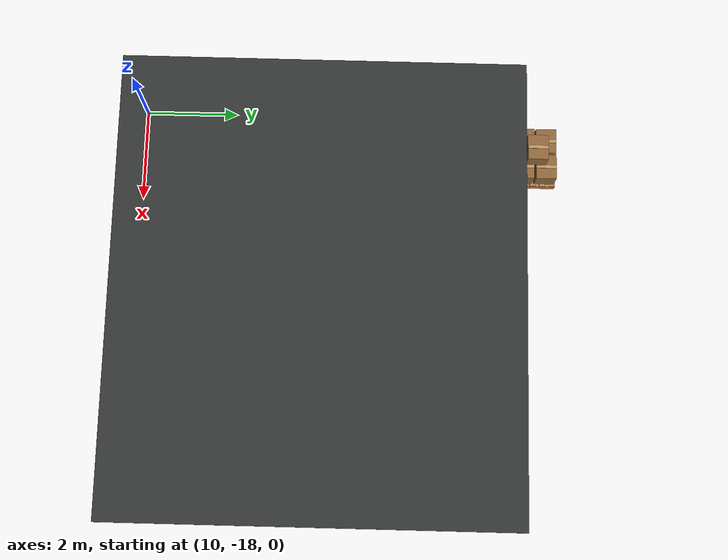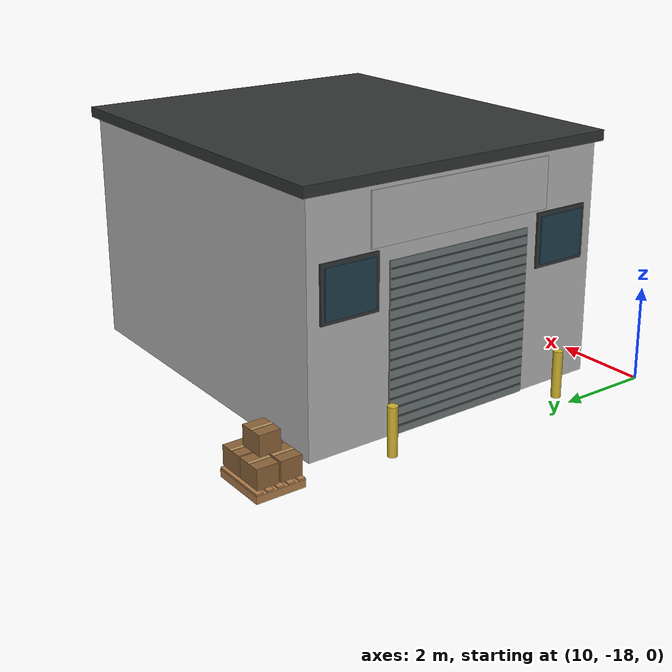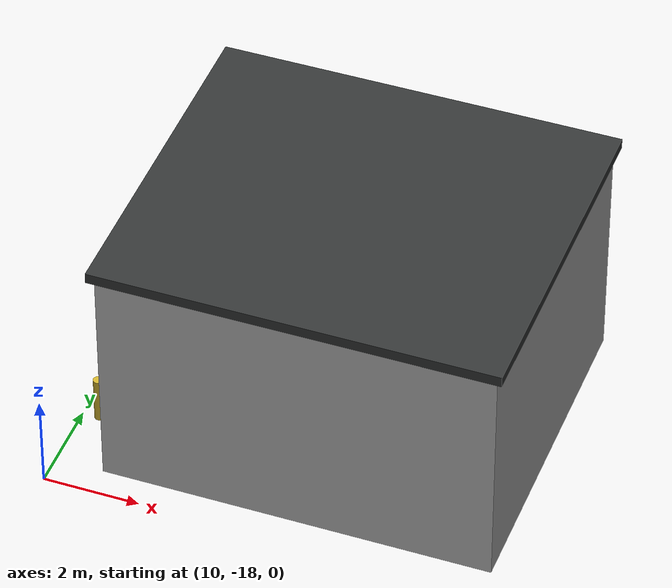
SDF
<sdf version="1.5">
 <world name="default">
  <include><uri>model://sun</uri></include>
  <model name="brick_warehouse">
   <static>true</static>
   <pose>15 -13.9 0.003 0 0 0</pose>
   <link name="structure">
    <visual name="main_building">
     <pose>0 0 2.5 0 0 0</pose>
     <geometry><box><size>8 7 5</size></box></geometry>
     <material>
      <script>
       <uri>file:///home/fxxk/px4_agent/scene/materials/scripts</uri>
       <uri>file:///home/fxxk/px4_agent/scene/materials/textures</uri>
       <name>Yard/brick</name>
      </script>
     </material>
    </visual>
    <collision name="main_building_collision">
     <pose>0 0 2.5 0 0 0</pose>
     <geometry><box><size>8 7 5</size></box></geometry>
     <surface><friction><ode><mu>1.0</mu><mu2>1.0</mu2></ode></friction></surface>
    </collision>
    <visual name="flat_roof">
     <pose>0 0 5.1 0 0 0</pose>
     <geometry><box><size>8.25 7.25 0.22</size></box></geometry>
     <material>
      <ambient>0.2 0.21 0.21 1</ambient>
      <diffuse>0.2 0.21 0.21 1</diffuse>
      <specular>0.04 0.04 0.04 1</specular>
     </material>
    </visual>
    <collision name="flat_roof_collision">
     <pose>0 0 5.1 0 0 0</pose>
     <geometry><box><size>8.25 7.25 0.22</size></box></geometry>
     <surface><friction><ode><mu>1.0</mu><mu2>1.0</mu2></ode></friction></surface>
    </collision>
    <visual name="loading_door">
     <pose>-4.022 0 1.75 0 0 0</pose>
     <geometry><box><size>0.032 3.4 3.5</size></box></geometry>
     <material>
      <ambient>0.45 0.48 0.48 1</ambient>
      <diffuse>0.45 0.48 0.48 1</diffuse>
      <specular>0.04 0.04 0.04 1</specular>
     </material>
    </visual>
    <visual name="door_slat_0">
     <pose>-4.048 0 0.18 0 0 0</pose>
     <geometry><box><size>0.036 3.36 0.025</size></box></geometry>
     <material>
      <ambient>0.27 0.3 0.3 1</ambient>
      <diffuse>0.27 0.3 0.3 1</diffuse>
      <specular>0.04 0.04 0.04 1</specular>
     </material>
    </visual>
    <visual name="door_slat_1">
     <pose>-4.048 0 0.378125 0 0 0</pose>
     <geometry><box><size>0.036 3.36 0.025</size></box></geometry>
     <material>
      <ambient>0.27 0.3 0.3 1</ambient>
      <diffuse>0.27 0.3 0.3 1</diffuse>
      <specular>0.04 0.04 0.04 1</specular>
     </material>
    </visual>
    <visual name="door_slat_2">
     <pose>-4.048 0 0.57625 0 0 0</pose>
     <geometry><box><size>0.036 3.36 0.025</size></box></geometry>
     <material>
      <ambient>0.27 0.3 0.3 1</ambient>
      <diffuse>0.27 0.3 0.3 1</diffuse>
      <specular>0.04 0.04 0.04 1</specular>
     </material>
    </visual>
    <visual name="door_slat_3">
     <pose>-4.048 0 0.774375 0 0 0</pose>
     <geometry><box><size>0.036 3.36 0.025</size></box></geometry>
     <material>
      <ambient>0.27 0.3 0.3 1</ambient>
      <diffuse>0.27 0.3 0.3 1</diffuse>
      <specular>0.04 0.04 0.04 1</specular>
     </material>
    </visual>
    <visual name="door_slat_4">
     <pose>-4.048 0 0.9725 0 0 0</pose>
     <geometry><box><size>0.036 3.36 0.025</size></box></geometry>
     <material>
      <ambient>0.27 0.3 0.3 1</ambient>
      <diffuse>0.27 0.3 0.3 1</diffuse>
      <specular>0.04 0.04 0.04 1</specular>
     </material>
    </visual>
    <visual name="door_slat_5">
     <pose>-4.048 0 1.170625 0 0 0</pose>
     <geometry><box><size>0.036 3.36 0.025</size></box></geometry>
     <material>
      <ambient>0.27 0.3 0.3 1</ambient>
      <diffuse>0.27 0.3 0.3 1</diffuse>
      <specular>0.04 0.04 0.04 1</specular>
     </material>
    </visual>
    <visual name="door_slat_6">
     <pose>-4.048 0 1.36875 0 0 0</pose>
     <geometry><box><size>0.036 3.36 0.025</size></box></geometry>
     <material>
      <ambient>0.27 0.3 0.3 1</ambient>
      <diffuse>0.27 0.3 0.3 1</diffuse>
      <specular>0.04 0.04 0.04 1</specular>
     </material>
    </visual>
    <visual name="door_slat_7">
     <pose>-4.048 0 1.566875 0 0 0</pose>
     <geometry><box><size>0.036 3.36 0.025</size></box></geometry>
     <material>
      <ambient>0.27 0.3 0.3 1</ambient>
      <diffuse>0.27 0.3 0.3 1</diffuse>
      <specular>0.04 0.04 0.04 1</specular>
     </material>
    </visual>
    <visual name="door_slat_8">
     <pose>-4.048 0 1.765 0 0 0</pose>
     <geometry><box><size>0.036 3.36 0.025</size></box></geometry>
     <material>
      <ambient>0.27 0.3 0.3 1</ambient>
      <diffuse>0.27 0.3 0.3 1</diffuse>
      <specular>0.04 0.04 0.04 1</specular>
     </material>
    </visual>
    <visual name="door_slat_9">
     <pose>-4.048 0 1.963125 0 0 0</pose>
     <geometry><box><size>0.036 3.36 0.025</size></box></geometry>
     <material>
      <ambient>0.27 0.3 0.3 1</ambient>
      <diffuse>0.27 0.3 0.3 1</diffuse>
      <specular>0.04 0.04 0.04 1</specular>
     </material>
    </visual>
    <visual name="door_slat_10">
     <pose>-4.048 0 2.16125 0 0 0</pose>
     <geometry><box><size>0.036 3.36 0.025</size></box></geometry>
     <material>
      <ambient>0.27 0.3 0.3 1</ambient>
      <diffuse>0.27 0.3 0.3 1</diffuse>
      <specular>0.04 0.04 0.04 1</specular>
     </material>
    </visual>
    <visual name="door_slat_11">
     <pose>-4.048 0 2.359375 0 0 0</pose>
     <geometry><box><size>0.036 3.36 0.025</size></box></geometry>
     <material>
      <ambient>0.27 0.3 0.3 1</ambient>
      <diffuse>0.27 0.3 0.3 1</diffuse>
      <specular>0.04 0.04 0.04 1</specular>
     </material>
    </visual>
    <visual name="door_slat_12">
     <pose>-4.048 0 2.5575 0 0 0</pose>
     <geometry><box><size>0.036 3.36 0.025</size></box></geometry>
     <material>
      <ambient>0.27 0.3 0.3 1</ambient>
      <diffuse>0.27 0.3 0.3 1</diffuse>
      <specular>0.04 0.04 0.04 1</specular>
     </material>
    </visual>
    <visual name="door_slat_13">
     <pose>-4.048 0 2.755625 0 0 0</pose>
     <geometry><box><size>0.036 3.36 0.025</size></box></geometry>
     <material>
      <ambient>0.27 0.3 0.3 1</ambient>
      <diffuse>0.27 0.3 0.3 1</diffuse>
      <specular>0.04 0.04 0.04 1</specular>
     </material>
    </visual>
    <visual name="door_slat_14">
     <pose>-4.048 0 2.95375 0 0 0</pose>
     <geometry><box><size>0.036 3.36 0.025</size></box></geometry>
     <material>
      <ambient>0.27 0.3 0.3 1</ambient>
      <diffuse>0.27 0.3 0.3 1</diffuse>
      <specular>0.04 0.04 0.04 1</specular>
     </material>
    </visual>
    <visual name="door_slat_15">
     <pose>-4.048 0 3.151875 0 0 0</pose>
     <geometry><box><size>0.036 3.36 0.025</size></box></geometry>
     <material>
      <ambient>0.27 0.3 0.3 1</ambient>
      <diffuse>0.27 0.3 0.3 1</diffuse>
      <specular>0.04 0.04 0.04 1</specular>
     </material>
    </visual>
    <visual name="door_slat_16">
     <pose>-4.048 0 3.35 0 0 0</pose>
     <geometry><box><size>0.036 3.36 0.025</size></box></geometry>
     <material>
      <ambient>0.27 0.3 0.3 1</ambient>
      <diffuse>0.27 0.3 0.3 1</diffuse>
      <specular>0.04 0.04 0.04 1</specular>
     </material>
    </visual>
    <visual name="front_window_frame_-1">
     <pose>-4.033 -2.6 3.17 0 0 0</pose>
     <geometry><box><size>0.044 1.28 1.15</size></box></geometry>
     <material>
      <ambient>0.2 0.22 0.22 1</ambient>
      <diffuse>0.2 0.22 0.22 1</diffuse>
      <specular>0.04 0.04 0.04 1</specular>
     </material>
    </visual>
    <visual name="front_window_-1">
     <pose>-4.064 -2.6 3.17 0 0 0</pose>
     <geometry><box><size>0.048 1.12 0.99</size></box></geometry>
     <material>
      <ambient>0.12 0.25 0.3 1</ambient>
      <diffuse>0.12 0.25 0.3 1</diffuse>
      <specular>0.04 0.04 0.04 1</specular>
     </material>
    </visual>
    <visual name="front_window_frame_1">
     <pose>-4.033 2.6 3.17 0 0 0</pose>
     <geometry><box><size>0.044 1.28 1.15</size></box></geometry>
     <material>
      <ambient>0.2 0.22 0.22 1</ambient>
      <diffuse>0.2 0.22 0.22 1</diffuse>
      <specular>0.04 0.04 0.04 1</specular>
     </material>
    </visual>
    <visual name="front_window_1">
     <pose>-4.064 2.6 3.17 0 0 0</pose>
     <geometry><box><size>0.048 1.12 0.99</size></box></geometry>
     <material>
      <ambient>0.12 0.25 0.3 1</ambient>
      <diffuse>0.12 0.25 0.3 1</diffuse>
      <specular>0.04 0.04 0.04 1</specular>
     </material>
    </visual>
    <visual name="warehouse_name">
     <pose>-4.06 0 4.35 0 0 0</pose>
     <geometry><box><size>0.028 4.3 1.075</size></box></geometry>
     <material>
      <script>
       <uri>file:///home/fxxk/px4_agent/scene/materials/scripts</uri>
       <uri>file:///home/fxxk/px4_agent/scene/materials/textures</uri>
       <name>Yard/warehouse_sign</name>
      </script>
     </material>
    </visual>
    <visual name="dock_bollard_0">
     <pose>-4.65 -2.1 0.5 0 0 0</pose>
     <geometry><cylinder><radius>0.1</radius><length>1</length></cylinder></geometry>
     <material>
      <ambient>0.82 0.7 0.18 1</ambient>
      <diffuse>0.82 0.7 0.18 1</diffuse>
      <specular>0.04 0.04 0.04 1</specular>
     </material>
    </visual>
    <collision name="dock_bollard_0_collision">
     <pose>-4.65 -2.1 0.5 0 0 0</pose>
     <geometry><cylinder><radius>0.1</radius><length>1</length></cylinder></geometry>
     <surface><friction><ode><mu>1.0</mu><mu2>1.0</mu2></ode></friction></surface>
    </collision>
    <visual name="dock_bollard_1">
     <pose>-4.65 2.1 0.5 0 0 0</pose>
     <geometry><cylinder><radius>0.1</radius><length>1</length></cylinder></geometry>
     <material>
      <ambient>0.82 0.7 0.18 1</ambient>
      <diffuse>0.82 0.7 0.18 1</diffuse>
      <specular>0.04 0.04 0.04 1</specular>
     </material>
    </visual>
    <collision name="dock_bollard_1_collision">
     <pose>-4.65 2.1 0.5 0 0 0</pose>
     <geometry><cylinder><radius>0.1</radius><length>1</length></cylinder></geometry>
     <surface><friction><ode><mu>1.0</mu><mu2>1.0</mu2></ode></friction></surface>
    </collision>
   </link>
  </model>
  <model name="cartons_pallet_1">
   <static>true</static>
   <pose>10.95 -9.4 0.003 0 0 0</pose>
   <link name="structure">
    <visual name="pallet_collision_base">
     <pose>0 0 0.075 0 0 0</pose>
     <geometry><box><size>1.2 1 0.15</size></box></geometry>
     <material>
      <script>
       <uri>file:///home/fxxk/px4_agent/scene/materials/scripts</uri>
       <uri>file:///home/fxxk/px4_agent/scene/materials/textures</uri>
       <name>Yard/wood</name>
      </script>
     </material>
    </visual>
    <collision name="pallet_collision_base_collision">
     <pose>0 0 0.075 0 0 0</pose>
     <geometry><box><size>1.2 1 0.15</size></box></geometry>
     <surface><friction><ode><mu>1.0</mu><mu2>1.0</mu2></ode></friction></surface>
    </collision>
    <visual name="pallet_slat_0">
     <pose>0 -0.43 0.168 0 0 0</pose>
     <geometry><box><size>1.2 0.13 0.035</size></box></geometry>
     <material>
      <script>
       <uri>file:///home/fxxk/px4_agent/scene/materials/scripts</uri>
       <uri>file:///home/fxxk/px4_agent/scene/materials/textures</uri>
       <name>Yard/wood</name>
      </script>
     </material>
    </visual>
    <visual name="pallet_slat_1">
     <pose>0 -0.215 0.168 0 0 0</pose>
     <geometry><box><size>1.2 0.13 0.035</size></box></geometry>
     <material>
      <script>
       <uri>file:///home/fxxk/px4_agent/scene/materials/scripts</uri>
       <uri>file:///home/fxxk/px4_agent/scene/materials/textures</uri>
       <name>Yard/wood</name>
      </script>
     </material>
    </visual>
    <visual name="pallet_slat_2">
     <pose>0 0 0.168 0 0 0</pose>
     <geometry><box><size>1.2 0.13 0.035</size></box></geometry>
     <material>
      <script>
       <uri>file:///home/fxxk/px4_agent/scene/materials/scripts</uri>
       <uri>file:///home/fxxk/px4_agent/scene/materials/textures</uri>
       <name>Yard/wood</name>
      </script>
     </material>
    </visual>
    <visual name="pallet_slat_3">
     <pose>0 0.215 0.168 0 0 0</pose>
     <geometry><box><size>1.2 0.13 0.035</size></box></geometry>
     <material>
      <script>
       <uri>file:///home/fxxk/px4_agent/scene/materials/scripts</uri>
       <uri>file:///home/fxxk/px4_agent/scene/materials/textures</uri>
       <name>Yard/wood</name>
      </script>
     </material>
    </visual>
    <visual name="pallet_slat_4">
     <pose>0 0.43 0.168 0 0 0</pose>
     <geometry><box><size>1.2 0.13 0.035</size></box></geometry>
     <material>
      <script>
       <uri>file:///home/fxxk/px4_agent/scene/materials/scripts</uri>
       <uri>file:///home/fxxk/px4_agent/scene/materials/textures</uri>
       <name>Yard/wood</name>
      </script>
     </material>
    </visual>
    <visual name="carton_0">
     <pose>-0.29 -0.24 0.43 0 0 0</pose>
     <geometry><box><size>0.54 0.44 0.4</size></box></geometry>
     <material>
      <ambient>0.56 0.4 0.23 1</ambient>
      <diffuse>0.56 0.4 0.23 1</diffuse>
      <specular>0.04 0.04 0.04 1</specular>
     </material>
    </visual>
    <collision name="carton_0_collision">
     <pose>-0.29 -0.24 0.43 0 0 0</pose>
     <geometry><box><size>0.54 0.44 0.4</size></box></geometry>
     <surface><friction><ode><mu>1.0</mu><mu2>1.0</mu2></ode></friction></surface>
    </collision>
    <visual name="packing_tape_0">
     <pose>-0.29 -0.24 0.635 0 0 0</pose>
     <geometry><box><size>0.075 0.442 0.008</size></box></geometry>
     <material>
      <ambient>0.72 0.58 0.36 1</ambient>
      <diffuse>0.72 0.58 0.36 1</diffuse>
      <specular>0.04 0.04 0.04 1</specular>
     </material>
    </visual>
    <visual name="carton_1">
     <pose>0.29 -0.24 0.43 0 0 0</pose>
     <geometry><box><size>0.54 0.44 0.4</size></box></geometry>
     <material>
      <ambient>0.56 0.4 0.23 1</ambient>
      <diffuse>0.56 0.4 0.23 1</diffuse>
      <specular>0.04 0.04 0.04 1</specular>
     </material>
    </visual>
    <collision name="carton_1_collision">
     <pose>0.29 -0.24 0.43 0 0 0</pose>
     <geometry><box><size>0.54 0.44 0.4</size></box></geometry>
     <surface><friction><ode><mu>1.0</mu><mu2>1.0</mu2></ode></friction></surface>
    </collision>
    <visual name="packing_tape_1">
     <pose>0.29 -0.24 0.635 0 0 0</pose>
     <geometry><box><size>0.075 0.442 0.008</size></box></geometry>
     <material>
      <ambient>0.72 0.58 0.36 1</ambient>
      <diffuse>0.72 0.58 0.36 1</diffuse>
      <specular>0.04 0.04 0.04 1</specular>
     </material>
    </visual>
    <visual name="carton_2">
     <pose>-0.29 0.24 0.43 0 0 0</pose>
     <geometry><box><size>0.54 0.44 0.4</size></box></geometry>
     <material>
      <ambient>0.56 0.4 0.23 1</ambient>
      <diffuse>0.56 0.4 0.23 1</diffuse>
      <specular>0.04 0.04 0.04 1</specular>
     </material>
    </visual>
    <collision name="carton_2_collision">
     <pose>-0.29 0.24 0.43 0 0 0</pose>
     <geometry><box><size>0.54 0.44 0.4</size></box></geometry>
     <surface><friction><ode><mu>1.0</mu><mu2>1.0</mu2></ode></friction></surface>
    </collision>
    <visual name="packing_tape_2">
     <pose>-0.29 0.24 0.635 0 0 0</pose>
     <geometry><box><size>0.075 0.442 0.008</size></box></geometry>
     <material>
      <ambient>0.72 0.58 0.36 1</ambient>
      <diffuse>0.72 0.58 0.36 1</diffuse>
      <specular>0.04 0.04 0.04 1</specular>
     </material>
    </visual>
    <visual name="carton_3">
     <pose>0.29 0.24 0.43 0 0 0</pose>
     <geometry><box><size>0.54 0.44 0.4</size></box></geometry>
     <material>
      <ambient>0.56 0.4 0.23 1</ambient>
      <diffuse>0.56 0.4 0.23 1</diffuse>
      <specular>0.04 0.04 0.04 1</specular>
     </material>
    </visual>
    <collision name="carton_3_collision">
     <pose>0.29 0.24 0.43 0 0 0</pose>
     <geometry><box><size>0.54 0.44 0.4</size></box></geometry>
     <surface><friction><ode><mu>1.0</mu><mu2>1.0</mu2></ode></friction></surface>
    </collision>
    <visual name="packing_tape_3">
     <pose>0.29 0.24 0.635 0 0 0</pose>
     <geometry><box><size>0.075 0.442 0.008</size></box></geometry>
     <material>
      <ambient>0.72 0.58 0.36 1</ambient>
      <diffuse>0.72 0.58 0.36 1</diffuse>
      <specular>0.04 0.04 0.04 1</specular>
     </material>
    </visual>
    <visual name="carton_4">
     <pose>0 0 0.87 0 0 0</pose>
     <geometry><box><size>0.54 0.44 0.4</size></box></geometry>
     <material>
      <ambient>0.56 0.4 0.23 1</ambient>
      <diffuse>0.56 0.4 0.23 1</diffuse>
      <specular>0.04 0.04 0.04 1</specular>
     </material>
    </visual>
    <collision name="carton_4_collision">
     <pose>0 0 0.87 0 0 0</pose>
     <geometry><box><size>0.54 0.44 0.4</size></box></geometry>
     <surface><friction><ode><mu>1.0</mu><mu2>1.0</mu2></ode></friction></surface>
    </collision>
    <visual name="packing_tape_4">
     <pose>0 0 1.075 0 0 0</pose>
     <geometry><box><size>0.075 0.442 0.008</size></box></geometry>
     <material>
      <ambient>0.72 0.58 0.36 1</ambient>
      <diffuse>0.72 0.58 0.36 1</diffuse>
      <specular>0.04 0.04 0.04 1</specular>
     </material>
    </visual>
   </link>
  </model>
 </world>
</sdf>
